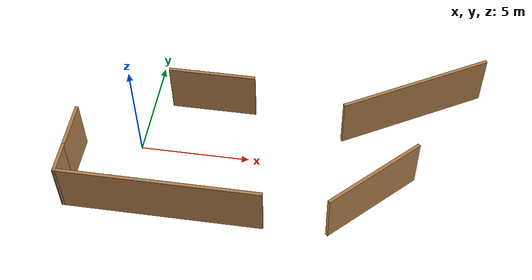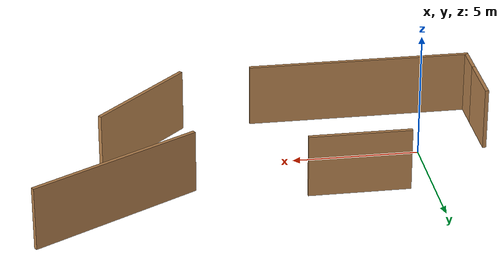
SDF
<?xml version='1.0'?>
<sdf version='1.7'>
  <model name='walls'>
    <pose>6.31329 0.91804 0 0 -0 0</pose>
    <link name='Wall_0'>
      <collision name='Wall_0_Collision'>
        <geometry>
          <box>
            <size>1.5 0.15 2.5</size>
          </box>
        </geometry>
        <pose>0 0 1.25 0 -0 0</pose>
      </collision>
      <visual name='Wall_0_Visual'>
        <pose>0 0 1.25 0 -0 0</pose>
        <geometry>
          <box>
            <size>1.5 0.15 2.5</size>
          </box>
        </geometry>
        <material>
          <script>
            <uri>file://media/materials/scripts/gazebo.material</uri>
            <name>Gazebo/Wood</name>
          </script>
          <ambient>1 1 1 1</ambient>
        </material>
        <meta>
          <layer>0</layer>
        </meta>
      </visual>
      <pose>-9.01329 -3.79304 0 0 -0 1.5708</pose>
    </link>
    <link name='Wall_10'>
      <collision name='Wall_10_Collision'>
        <geometry>
          <box>
            <size>5 0.15 2.5</size>
          </box>
        </geometry>
        <pose>0 0 1.25 0 -0 0</pose>
      </collision>
      <visual name='Wall_10_Visual'>
        <pose>0 0 1.25 0 -0 0</pose>
        <geometry>
          <box>
            <size>5 0.15 2.5</size>
          </box>
        </geometry>
        <material>
          <script>
            <uri>file://media/materials/scripts/gazebo.material</uri>
            <name>Gazebo/Wood</name>
          </script>
          <ambient>1 1 1 1</ambient>
        </material>
        <meta>
          <layer>0</layer>
        </meta>
      </visual>
      <pose>4.44479 -2.69143 0 0 -0 0.785398</pose>
    </link>
    <link name='Wall_13'>
      <collision name='Wall_13_Collision'>
        <geometry>
          <box>
            <size>7.25 0.15 2.5</size>
          </box>
        </geometry>
        <pose>0 0 1.25 0 -0 0</pose>
      </collision>
      <visual name='Wall_13_Visual'>
        <pose>0 0 1.25 0 -0 0</pose>
        <geometry>
          <box>
            <size>7.25 0.15 2.5</size>
          </box>
        </geometry>
        <material>
          <script>
            <uri>file://media/materials/scripts/gazebo.material</uri>
            <name>Gazebo/Wood</name>
          </script>
          <ambient>1 1 1 1</ambient>
        </material>
        <meta>
          <layer>0</layer>
        </meta>
      </visual>
      <pose>5.91145 2.66559 0 0 -0 0.523599</pose>
    </link>
    <link name='Wall_2'>
      <collision name='Wall_2_Collision'>
        <geometry>
          <box>
            <size>2.25 0.15 2.5</size>
          </box>
        </geometry>
        <pose>0 0 1.25 0 -0 0</pose>
      </collision>
      <visual name='Wall_2_Visual'>
        <pose>0 0 1.25 0 -0 0</pose>
        <geometry>
          <box>
            <size>2.25 0.15 2.5</size>
          </box>
        </geometry>
        <material>
          <script>
            <uri>file://media/materials/scripts/gazebo.material</uri>
            <name>Gazebo/Wood</name>
          </script>
          <ambient>1 1 1 1</ambient>
        </material>
        <meta>
          <layer>0</layer>
        </meta>
      </visual>
      <pose>-9.01329 -2.06804 0 0 -0 1.5708</pose>
    </link>
    <link name='Wall_4'>
      <collision name='Wall_4_Collision'>
        <geometry>
          <box>
            <size>9 0.15 2.5</size>
          </box>
        </geometry>
        <pose>0 0 1.25 0 -0 0</pose>
      </collision>
      <visual name='Wall_4_Visual'>
        <pose>0 0 1.25 0 -0 0</pose>
        <geometry>
          <box>
            <size>9 0.15 2.5</size>
          </box>
        </geometry>
        <material>
          <script>
            <uri>file://media/materials/scripts/gazebo.material</uri>
            <name>Gazebo/Wood</name>
          </script>
          <ambient>1 1 1 1</ambient>
        </material>
        <meta>
          <layer>0</layer>
        </meta>
      </visual>
      <pose>-4.58829 -4.46804 0 0 -0 0</pose>
    </link>
    <link name='Wall_8'>
      <collision name='Wall_8_Collision'>
        <geometry>
          <box>
            <size>4 0.15 2.5</size>
          </box>
        </geometry>
        <pose>0 0 1.25 0 -0 0</pose>
      </collision>
      <visual name='Wall_8_Visual'>
        <pose>0 0 1.25 0 -0 0</pose>
        <geometry>
          <box>
            <size>4 0.15 2.5</size>
          </box>
        </geometry>
        <material>
          <script>
            <uri>file://media/materials/scripts/gazebo.material</uri>
            <name>Gazebo/Wood</name>
          </script>
          <ambient>1 1 1 1</ambient>
        </material>
        <meta>
          <layer>0</layer>
        </meta>
      </visual>
      <pose>-3.42382 1.90714 0 0 -0 0</pose>
    </link>
    <static>1</static>
  </model>
</sdf>
